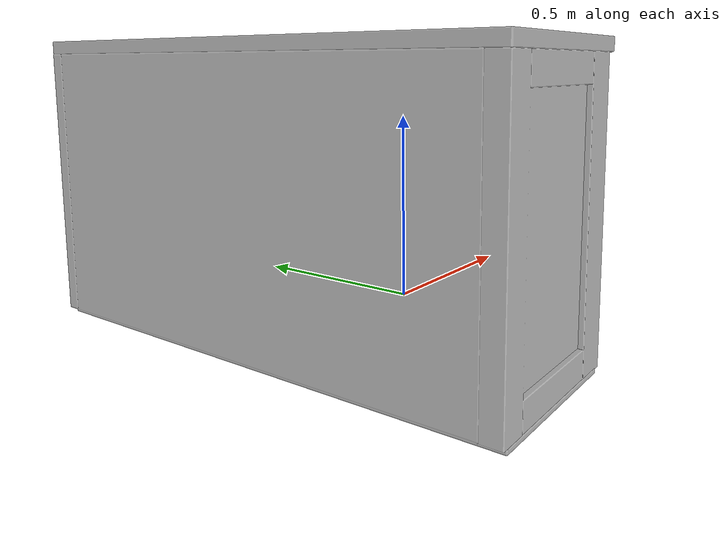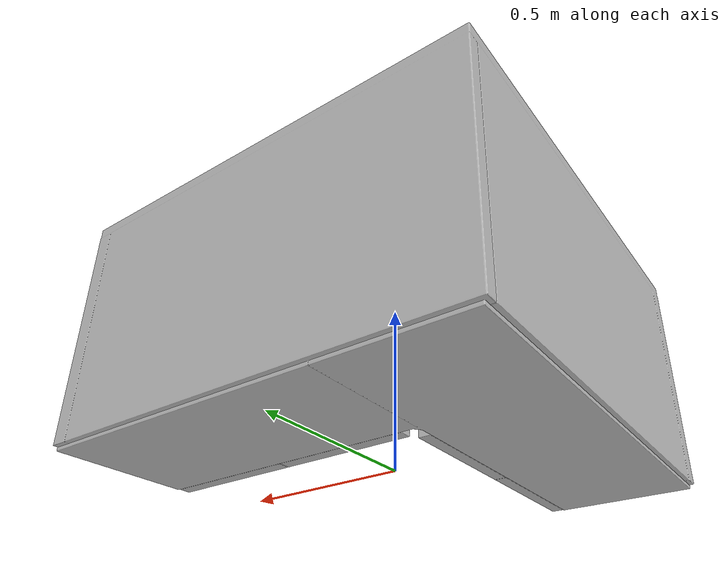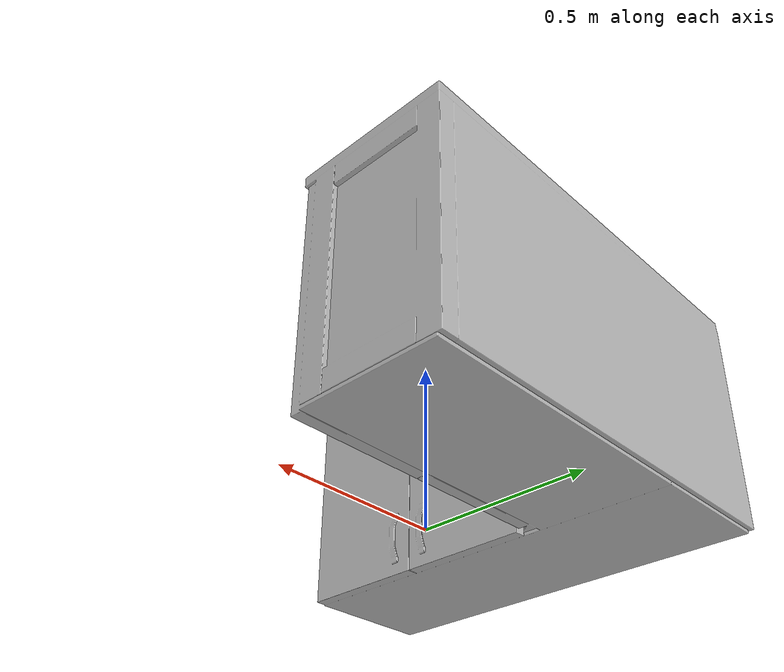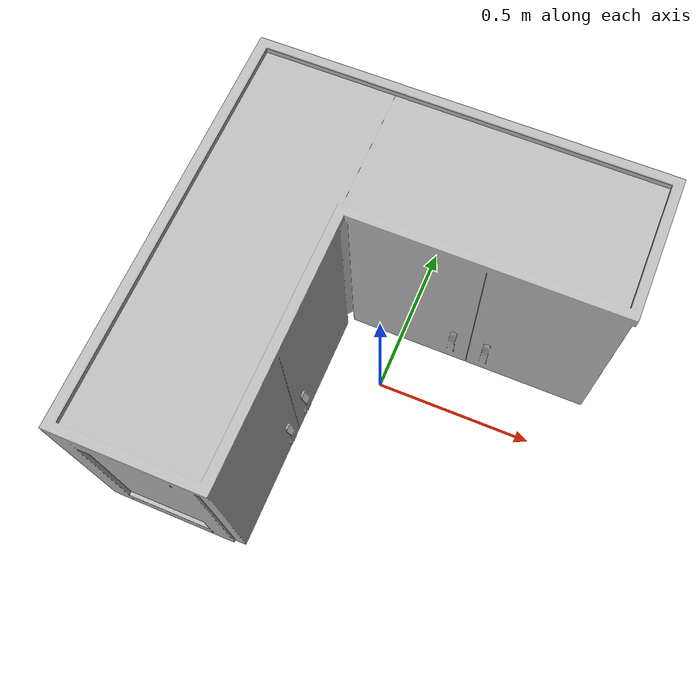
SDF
<?xml version='1.0'?>
<sdf version='1.4'>
  <model name='251'>
    <pose>0 0 0 0 0 0</pose>
    <static>true</static>
    <link name='link'>
      <collision name='collision'>
        <pose>0 0 0 0 0 0</pose>
        <geometry>
          <box>
            <size>1.2455 1.25208 2</size>
          </box>
        </geometry>
      </collision>
      <visual name='visual'>
        <pose>0 0 0 0 0 0</pose>
        <geometry>
          <mesh><uri>model://251/251.dae</uri></mesh>
        </geometry>
      </visual>
    </link>
  </model>
</sdf>
